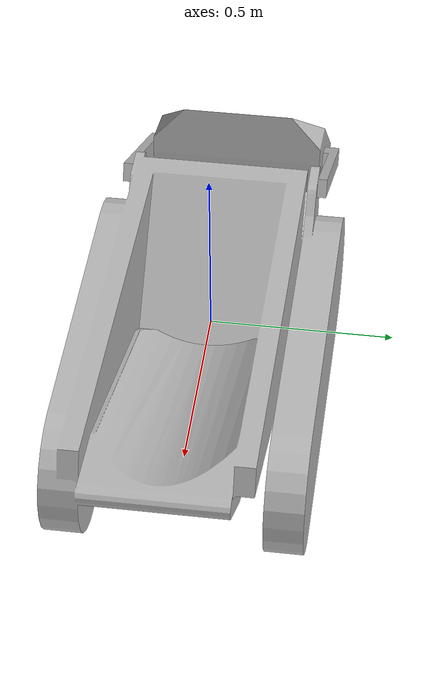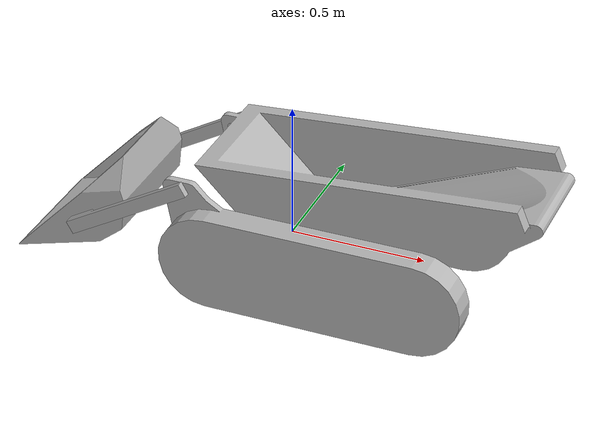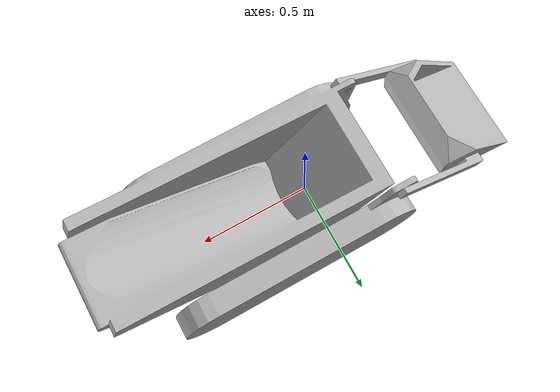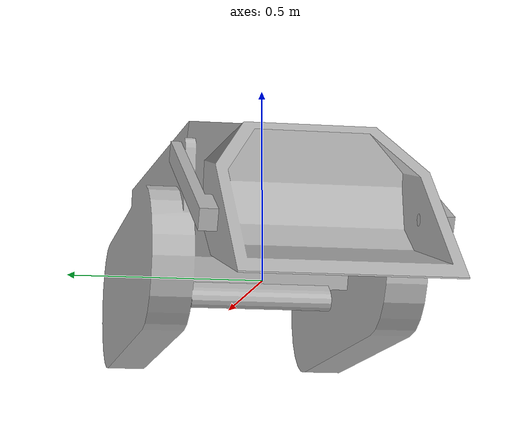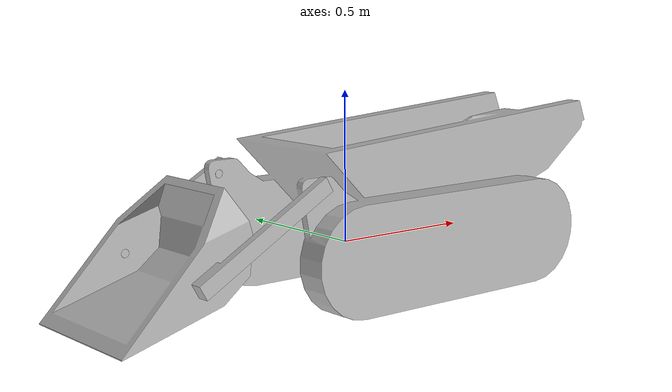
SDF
<sdf version="1.7">
  <model name="REAPER">
    <link name="Chassis">
      <inertial>
        <pose>0.268042 0.102022 -0 0 -0 0</pose>
        <mass>146.225</mass>
        <inertia>
          <ixx>10.52</ixx>
          <ixy>-1.93496</ixy>
          <ixz>1.65925e-07</ixz>
          <iyy>22.9867</iyy>
          <iyz>1.82289e-06</iyz>
          <izz>18.0208</izz>
        </inertia>
      </inertial>
      <collision name="Chassis_collision">
        <pose>0 0 0 0 -0 0</pose>
        <geometry>
          <mesh>
            <scale>1 1 1</scale>
            <uri>package://reaper_description/meshes/collision/Chassis.STL</uri>
          </mesh>
        </geometry>
      </collision>
      <visual name="Chassis_visual">
        <pose>0 0 0 0 -0 0</pose>
        <geometry>
          <mesh>
            <scale>1 1 1</scale>
            <uri>package://reaper_description/meshes/visual/Chassis.STL</uri>
          </mesh>
        </geometry>
      </visual>
    </link>
    <joint name="Linkage" type="revolute">
      <pose relative_to="Chassis">-0.33975 0 0.23217 1.5708 0.26832 0</pose>
      <parent>Chassis</parent>
      <child>Linkage</child>
      <axis>
        <xyz>0 0 1</xyz>
        <limit>
          <lower>0</lower>
          <upper>0</upper>
          <effort>0</effort>
          <velocity>0</velocity>
        </limit>
        <dynamics>
          <spring_reference>0</spring_reference>
          <spring_stiffness>0</spring_stiffness>
        </dynamics>
      </axis>
    </joint>
    <link name="Linkage">
      <pose relative_to="Linkage">0 0 0 0 -0 0</pose>
      <inertial>
        <pose>-0.163262 -0.165382 0 0 -0 0</pose>
        <mass>1.57935</mass>
        <inertia>
          <ixx>0.0206926</ixx>
          <ixy>-0.0199108</ixy>
          <ixz>-3.58706e-19</ixz>
          <iyy>0.0202093</iyy>
          <iyz>-1.26738e-19</iyz>
          <izz>0.0404826</izz>
        </inertia>
      </inertial>
      <collision name="Linkage_collision">
        <pose>0 0 0 0 -0 0</pose>
        <geometry>
          <mesh>
            <scale>1 1 1</scale>
            <uri>package://reaper_description/meshes/collision/Linkage.STL</uri>
          </mesh>
        </geometry>
      </collision>
      <visual name="Linkage_visual">
        <pose>0 0 0 0 -0 0</pose>
        <geometry>
          <mesh>
            <scale>1 1 1</scale>
            <uri>package://reaper_description/meshes/visual/Linkage.STL</uri>
          </mesh>
        </geometry>
      </visual>
    </link>
    <joint name="Bucket" type="revolute">
      <pose relative_to="Linkage">-0.29504 -0.29876 0 0 -0 0.5499</pose>
      <parent>Linkage</parent>
      <child>Bucket</child>
      <axis>
        <xyz>0 0 1</xyz>
        <limit>
          <lower>0</lower>
          <upper>0</upper>
          <effort>0</effort>
          <velocity>0</velocity>
        </limit>
        <dynamics>
          <spring_reference>0</spring_reference>
          <spring_stiffness>0</spring_stiffness>
        </dynamics>
      </axis>
    </joint>
    <link name="Bucket">
      <pose relative_to="Bucket">0 0 0 0 -0 0</pose>
      <inertial>
        <pose>-0.002213 -0.016008 -0 0 -0 0</pose>
        <mass>10.7697</mass>
        <inertia>
          <ixx>0.352456</ixx>
          <ixy>-0.0833393</ixy>
          <ixz>-4.80946e-17</ixz>
          <iyy>0.508759</iyy>
          <iyz>4.84926e-17</iyz>
          <izz>0.288541</izz>
        </inertia>
      </inertial>
      <collision name="Bucket_collision">
        <pose>0 0 0 0 -0 0</pose>
        <geometry>
          <mesh>
            <scale>1 1 1</scale>
            <uri>package://reaper_description/meshes/collision/Bucket.STL</uri>
          </mesh>
        </geometry>
      </collision>
      <visual name="Bucket_visual">
        <pose>0 0 0 0 -0 0</pose>
        <geometry>
          <mesh>
            <scale>1 1 1</scale>
            <uri>package://reaper_description/meshes/visual/Bucket.STL</uri>
          </mesh>
        </geometry>
      </visual>
    </link>
  </model>
</sdf>
